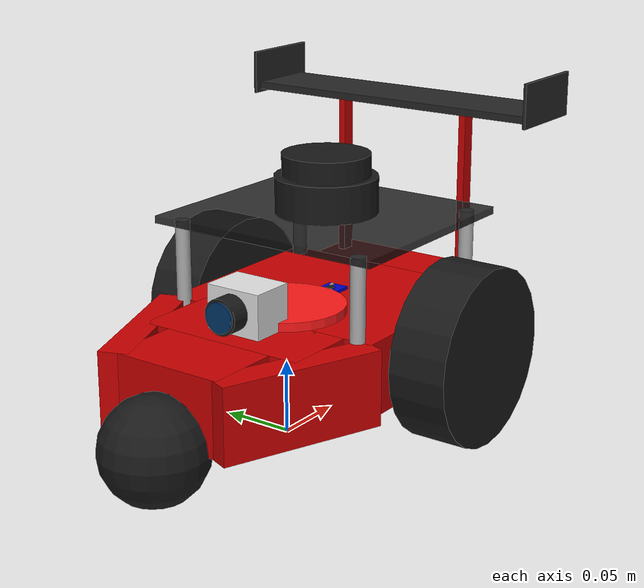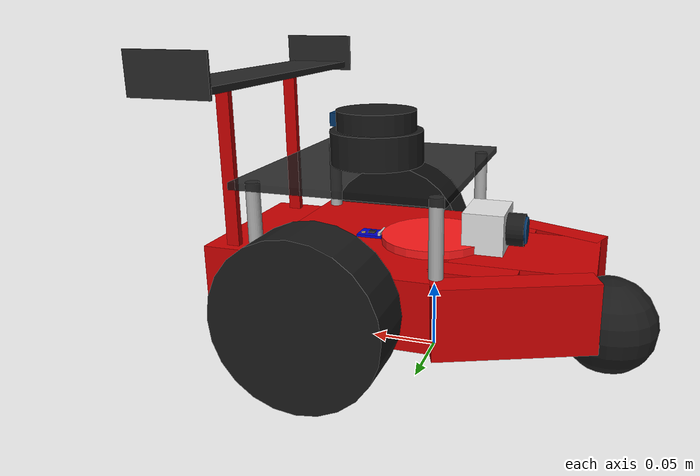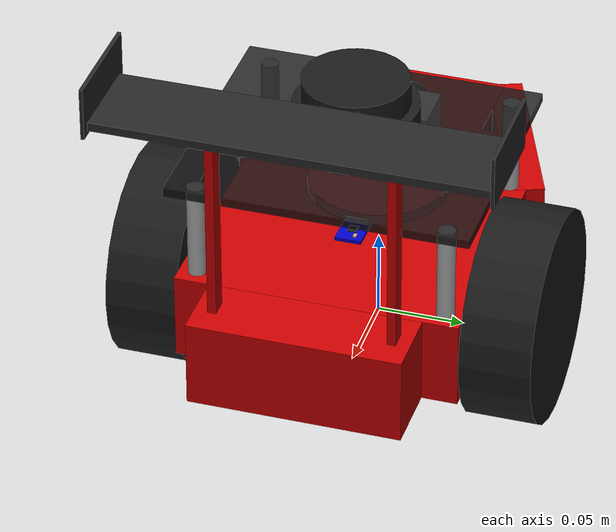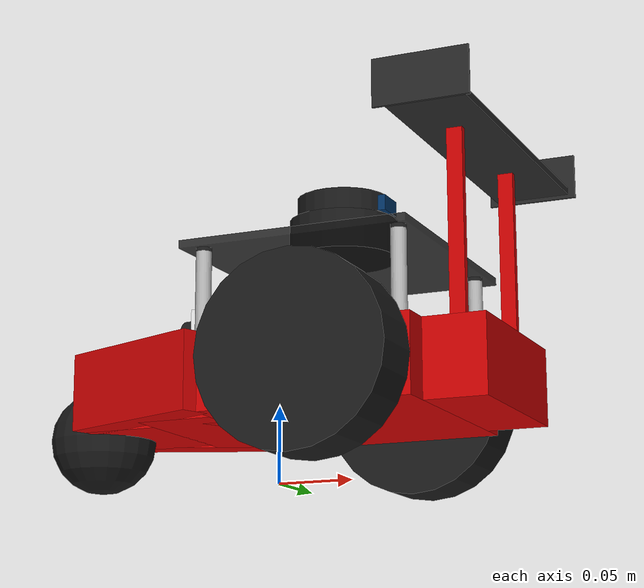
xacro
<?xml version="1.0"?>
<robot name="cool_diff_bot_lidar_3m">

  <material name="chassis_red"><color rgba="0.8 0.0 0.0 1"/></material>
  <material name="smoked_black"><color rgba="0.1 0.1 0.1 0.85"/></material>
  <material name="tire_black"><color rgba="0.1 0.1 0.1 1"/></material>
  <material name="carbon_black"><color rgba="0.15 0.15 0.15 1"/></material>
  <material name="plastic_black"><color rgba="0.1 0.1 0.1 1"/></material>
  <material name="white"><color rgba="0.9 0.9 0.9 1"/></material>
  <material name="glow_red"><color rgba="1.0 0.1 0.1 1"/></material>
  <material name="silver"><color rgba="0.7 0.7 0.7 1"/></material>
  <material name="lens_glass"><color rgba="0.0 0.2 0.4 1"/></material>
  <material name="pcb_blue"><color rgba="0.0 0.0 0.8 1"/></material>
  <material name="chip_black"><color rgba="0.1 0.1 0.1 1"/></material>
  <material name="component_beige"><color rgba="0.8 0.7 0.5 1"/></material>
  <material name="pin_silver"><color rgba="0.8 0.8 0.8 1"/></material>

  <link name="base_footprint"/>

  <link name="base_link">
    <visual>
      <origin xyz="0.05 0 0"/>
      <geometry><box size="0.14 0.16 0.05"/></geometry>
      <material name="chassis_red"/>
    </visual>
    <collision>
      <origin xyz="0.05 0 0"/>
      <geometry><box size="0.14 0.16 0.05"/></geometry>
    </collision>
    <visual>
      <origin xyz="-0.07 0 0"/>
      <geometry><box size="0.10 0.08 0.05"/></geometry>
      <material name="chassis_red"/>
    </visual>
    <collision>
      <origin xyz="-0.07 0 0"/>
      <geometry><box size="0.10 0.08 0.05"/></geometry>
    </collision>
    <visual>
      <origin xyz="-0.04 0 0"/>
      <geometry><box size="0.06 0.12 0.05"/></geometry>
      <material name="chassis_red"/>
    </visual>
    <collision>
      <origin xyz="-0.04 0 0"/>
      <geometry><box size="0.06 0.12 0.05"/></geometry>
    </collision>
    <visual>
      <origin xyz="0.14 0 0"/>
      <geometry><box size="0.04 0.12 0.05"/></geometry>
      <material name="chassis_red"/>
    </visual>
    <collision>
      <origin xyz="0.14 0 0"/>
      <geometry><box size="0.04 0.12 0.05"/></geometry>
    </collision>
    <visual>
      <origin xyz="-0.07 0.06 0" rpy="0 0 0.38"/>
      <geometry><box size="0.11 0.02 0.05"/></geometry>
      <material name="chassis_red"/>
    </visual>
    <visual>
      <origin xyz="-0.07 -0.06 0" rpy="0 0 -0.38"/>
      <geometry><box size="0.11 0.02 0.05"/></geometry>
      <material name="chassis_red"/>
    </visual>
    <inertial>
      <mass value="2.2"/>
      <origin xyz="-0.02 0 0"/>
      <inertia ixx="0.01" ixy="0" ixz="0" iyy="0.02" iyz="0" izz="0.02"/>
    </inertial>
  </link>

  <joint name="base_footprint_joint" type="fixed">
    <parent link="base_footprint"/>
    <child link="base_link"/>
    <origin xyz="0 0 0.06"/>
  </joint>

  <link name="imu_link">
    <visual><geometry><box size="0.02 0.015 0.002"/></geometry><material name="pcb_blue"/></visual>
    <visual><origin xyz="0 0 0.0015"/><geometry><box size="0.005 0.005 0.001"/></geometry><material name="chip_black"/></visual>
    <visual><origin xyz="0.006 0.003 0.0015"/><geometry><box size="0.003 0.002 0.001"/></geometry><material name="component_beige"/></visual>
    <visual><origin xyz="-0.008 0 0.002"/><geometry><box size="0.002 0.014 0.003"/></geometry><material name="pin_silver"/></visual>
    <collision><geometry><box size="0.02 0.015 0.002"/></geometry></collision>
    <inertial><mass value="0.005"/><origin xyz="0 0 0"/><inertia ixx="0.00001" ixy="0" ixz="0" iyy="0.00001" iyz="0" izz="0.00001"/></inertial>
  </link>

  <joint name="imu_joint" type="fixed">
    <parent link="base_link"/>
    <child link="imu_link"/>
    <origin xyz="0.05 0 0.026"/>
  </joint>

  <link name="camera_link">
    <visual>
      <origin xyz="-0.01 0 0" rpy="0 0 0"/>
      <geometry><box size="0.03 0.04 0.03"/></geometry>
      <material name="white"/>
    </visual>
    <visual>
      <origin xyz="0.01 0 0" rpy="0 1.5708 0"/>
      <geometry><cylinder radius="0.012" length="0.015"/></geometry>
      <material name="plastic_black"/>
    </visual>
    <visual>
      <origin xyz="0.018 0 0" rpy="0 1.5708 0"/>
      <geometry><cylinder radius="0.01" length="0.002"/></geometry>
      <material name="lens_glass"/>
    </visual>
    <collision>
      <origin xyz="-0.02 0 0"/>
      <geometry><box size="0.05 0.04 0.03"/></geometry>
    </collision>
    <inertial>
      <mass value="0.1"/>
      <origin xyz="0 0 0"/>
      <inertia ixx="0.0001" ixy="0" ixz="0" iyy="0.0001" iyz="0" izz="0.0001"/>
    </inertial>
  </link>

  <joint name="camera_joint" type="fixed">
    <parent link="base_link"/>
    <child link="camera_link"/>
    <origin xyz="-0.05 0 0.04" rpy="0 0 3.14159"/>
  </joint>

  <link name="camera_link_optical"/>

  <joint name="camera_optical_joint" type="fixed">
    <parent link="camera_link"/>
    <child link="camera_link_optical"/>
    <origin xyz="0 0 0" rpy="-1.5708 0 -1.5708"/>
  </joint>

  <link name="spoiler">
    <visual><origin xyz="0 0 0.12"/><geometry><box size="0.05 0.22 0.005"/></geometry><material name="carbon_black"/></visual>
    <visual><origin xyz="0 0.05 0.06"/><geometry><box size="0.01 0.005 0.12"/></geometry><material name="chassis_red"/></visual>
    <visual><origin xyz="0 -0.05 0.06"/><geometry><box size="0.01 0.005 0.12"/></geometry><material name="chassis_red"/></visual>
    <visual><origin xyz="0 0.11 0.13"/><geometry><box size="0.06 0.002 0.03"/></geometry><material name="carbon_black"/></visual>
    <visual><origin xyz="0 -0.11 0.13"/><geometry><box size="0.06 0.002 0.03"/></geometry><material name="carbon_black"/></visual>
  </link>

  <joint name="spoiler_joint" type="fixed">
    <parent link="base_link"/>
    <child link="spoiler"/>
    <origin xyz="0.14 0 0.025"/>
  </joint>

  <link name="top_plate">
    <visual><geometry><box size="0.15 0.17 0.005"/></geometry><material name="smoked_black"/></visual>
  </link>

  <joint name="top_plate_joint" type="fixed">
    <parent link="base_link"/>
    <child link="top_plate"/>
    <origin xyz="0.045 0 0.08"/>
  </joint>

  <link name="lidar_link">
    <visual><geometry><cylinder radius="0.035" length="0.025"/></geometry><material name="plastic_black"/></visual>
    <visual><origin xyz="0 0 0.02"/><geometry><cylinder radius="0.03" length="0.015"/></geometry><material name="plastic_black"/></visual>
    <visual><origin xyz="0.028 0 0.02"/><geometry><box size="0.01 0.02 0.01"/></geometry><material name="lens_glass"/></visual>
    <collision><origin xyz="0 0 0.0075"/><geometry><cylinder radius="0.035" length="0.04"/></geometry></collision>
    <inertial><mass value="0.2"/><origin xyz="0 0 0"/><inertia ixx="0.0001" ixy="0" ixz="0" iyy="0.0001" iyz="0" izz="0.0001"/></inertial>
  </link>

  <joint name="lidar_joint" type="fixed">
    <parent link="top_plate"/>
    <child link="lidar_link"/>
    <origin xyz="0 0 0.015"/>
  </joint>

  <link name="standoffs">
    <visual><origin xyz="0.11 0.07 0"/><geometry><cylinder radius="0.005" length="0.08"/></geometry><material name="silver"/></visual>
    <visual><origin xyz="0.11 -0.07 0"/><geometry><cylinder radius="0.005" length="0.08"/></geometry><material name="silver"/></visual>
    <visual><origin xyz="-0.02 0.07 0"/><geometry><cylinder radius="0.005" length="0.08"/></geometry><material name="silver"/></visual>
    <visual><origin xyz="-0.02 -0.07 0"/><geometry><cylinder radius="0.005" length="0.08"/></geometry><material name="silver"/></visual>
  </link>

  <joint name="standoff_joint" type="fixed">
    <parent link="base_link"/>
    <child link="standoffs"/>
    <origin xyz="0 0 0.04"/>
  </joint>

  <link name="left_wheel">
    <visual>
      <origin xyz="0 0 0" rpy="1.5708 0 0"/>
      <geometry><cylinder radius="0.06" length="0.04"/></geometry>
      <material name="tire_black"/>
    </visual>
    <collision>
      <origin xyz="0 0 0" rpy="1.5708 0 0"/>
      <geometry><cylinder radius="0.06" length="0.04"/></geometry>
    </collision>
    <inertial>
      <mass value="0.4"/>
      <origin xyz="0 0 0"/>
      <inertia ixx="0.001" ixy="0" ixz="0" iyy="0.001" iyz="0" izz="0.001"/>
    </inertial>
  </link>

  <joint name="left_wheel_joint" type="continuous">
    <parent link="base_link"/>
    <child link="left_wheel"/>
    <origin xyz="0.06 0.10 0"/>
    <axis xyz="0 -1 0"/>
  </joint>

  <link name="right_wheel">
    <visual>
      <origin xyz="0 0 0" rpy="1.5708 0 0"/>
      <geometry><cylinder radius="0.06" length="0.04"/></geometry>
      <material name="tire_black"/>
    </visual>
    <collision>
      <origin xyz="0 0 0" rpy="1.5708 0 0"/>
      <geometry><cylinder radius="0.06" length="0.04"/></geometry>
    </collision>
    <inertial>
      <mass value="0.4"/>
      <origin xyz="0 0 0"/>
      <inertia ixx="0.001" ixy="0" ixz="0" iyy="0.001" iyz="0" izz="0.001"/>
    </inertial>
  </link>

  <joint name="right_wheel_joint" type="continuous">
    <parent link="base_link"/>
    <child link="right_wheel"/>
    <origin xyz="0.06 -0.10 0"/>
    <axis xyz="0 -1 0"/>
  </joint>

  <link name="caster_ball">
    <visual><geometry><sphere radius="0.035"/></geometry><material name="tire_black"/></visual>
    <collision><geometry><sphere radius="0.035"/></geometry></collision>
    <inertial><mass value="0.2"/><origin xyz="0 0 0"/><inertia ixx="0.0001" ixy="0" ixz="0" iyy="0.0001" iyz="0" izz="0.0001"/></inertial>
  </link>

  <joint name="caster_joint" type="fixed">
    <parent link="base_link"/>
    <child link="caster_ball"/>
    <origin xyz="-0.13 0 -0.025"/>
  </joint>

  <link name="center_glow">
    <visual>
      <geometry><cylinder radius="0.04" length="0.01"/></geometry>
      <material name="glow_red"/>
    </visual>
  </link>

  <joint name="glow_joint" type="fixed">
    <parent link="base_link"/>
    <child link="center_glow"/>
    <origin xyz="0 0 0.026"/>
  </joint>

  <gazebo reference="base_link"><material>Gazebo/Red</material></gazebo>
  <gazebo reference="left_wheel"><mu1>1.0</mu1><mu2>1.0</mu2><material>Gazebo/Black</material></gazebo>
  <gazebo reference="right_wheel"><mu1>1.0</mu1><mu2>1.0</mu2><material>Gazebo/Black</material></gazebo>
  <gazebo reference="caster_ball"><mu1>0.0</mu1><mu2>0.0</mu2><material>Gazebo/Black</material></gazebo>
  <gazebo reference="spoiler"><material>Gazebo/DarkGrey</material></gazebo>
  <gazebo reference="top_plate"><material>Gazebo/DarkGrey</material></gazebo>
  <gazebo reference="center_glow"><material>Gazebo/RedGlow</material></gazebo>
  <gazebo reference="imu_link"><material>Gazebo/Blue</material></gazebo>

  <gazebo>
    <plugin name="diff_drive" filename="libgazebo_ros_diff_drive.so">
      <ros></ros>
      <left_joint>left_wheel_joint</left_joint>
      <right_joint>right_wheel_joint</right_joint>
      <wheel_separation>0.20</wheel_separation>
      <wheel_diameter>0.12</wheel_diameter>
      <max_wheel_torque>20</max_wheel_torque>
      <max_wheel_acceleration>1.0</max_wheel_acceleration>
      <publish_odom>true</publish_odom>
      <publish_odom_tf>true</publish_odom_tf>
      <publish_wheel_tf>true</publish_wheel_tf>
      <odometry_frame>odom</odometry_frame>
      <robot_base_frame>base_footprint</robot_base_frame>
    </plugin>
  </gazebo>

  <gazebo reference="imu_link">
    <gravity>true</gravity>
    <sensor name="imu_sensor" type="imu">
      <always_on>true</always_on>
      <update_rate>100</update_rate>
      <visualize>true</visualize>
      <plugin filename="libgazebo_ros_imu_sensor.so" name="imu_plugin">
        <ros>
          <remapping>~/out:=imu</remapping>
        </ros>
        <initial_orientation_as_reference>false</initial_orientation_as_reference>
      </plugin>
      <pose>0 0 0 0 0 0</pose>
    </sensor>
  </gazebo>

  <gazebo reference="camera_link">
    <material>Gazebo/White</material>
    <sensor type="depth" name="rear_depth_camera">
      <always_on>1</always_on>
      <update_rate>15</update_rate>
      <visualize>true</visualize>

      <camera name="camera">
        <horizontal_fov>1.047</horizontal_fov>
        <image>
          <width>640</width>
          <height>480</height>
          <format>R8G8B8</format>
        </image>
        <clip>
          <near>0.1</near>
          <far>10</far>
        </clip>
        <depth_camera>
          <output>depths</output>
        </depth_camera>
      </camera>

      <plugin name="camera_controller" filename="libgazebo_ros_camera.so">
        <ros>
          <namespace>camera</namespace>
          <remapping>custom_camera/image_raw:=color/image_raw</remapping>
          <remapping>custom_camera/image_depth:=depth/image_raw</remapping>
          <remapping>custom_camera/camera_info:=color/camera_info</remapping>
          <remapping>custom_camera/camera_info_depth:=depth/camera_info</remapping>
          <remapping>custom_camera/points:=depth/points</remapping>
        </ros>

        <camera_name>camera</camera_name>
        <frame_name>camera_link_optical</frame_name>
        <hack_baseline>0.07</hack_baseline>
        <min_depth>0.1</min_depth>
        <max_depth>10.0</max_depth>
      </plugin>
    </sensor>
  </gazebo>

  <gazebo reference="lidar_link">
    <material>Gazebo/FlatBlack</material>
    <sensor type="ray" name="lidar_sensor">
      <pose>0 0 0 0 0 0</pose>
      <visualize>false</visualize>
      <update_rate>10</update_rate>
      <ray>
        <scan>
          <horizontal>
            <samples>720</samples>
            <resolution>1</resolution>
            <min_angle>-3.14159</min_angle>
            <max_angle>3.14159</max_angle>
          </horizontal>
        </scan>
        <range>
          <min>0.15</min>
          <max>3.0</max>
          <resolution>0.01</resolution>
        </range>
        <noise>
          <type>gaussian</type>
          <mean>0.0</mean>
          <stddev>0.01</stddev>
        </noise>
      </ray>
      <plugin name="gazebo_ros_head_hokuyo_controller" filename="libgazebo_ros_ray_sensor.so">
        <ros>
          <remapping>~/out:=scan</remapping>
        </ros>
        <output_type>sensor_msgs/LaserScan</output_type>
        <frame_name>lidar_link</frame_name>
      </plugin>
    </sensor>
  </gazebo>

</robot>
